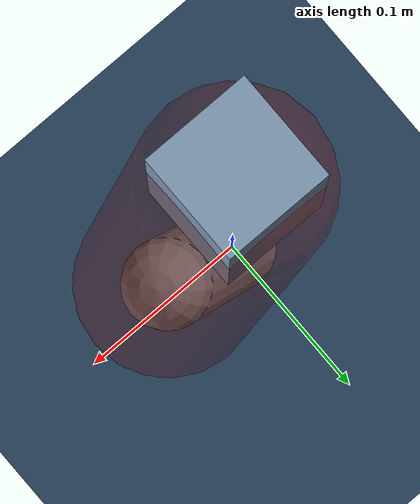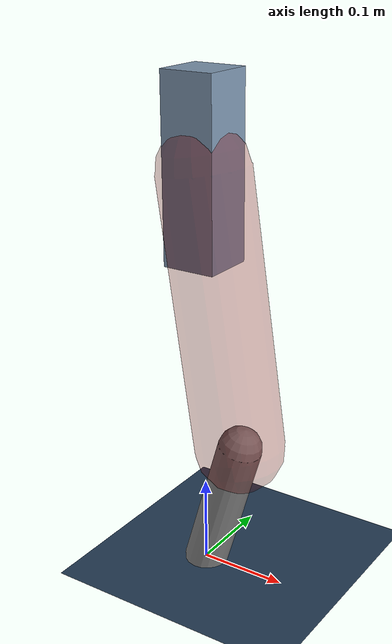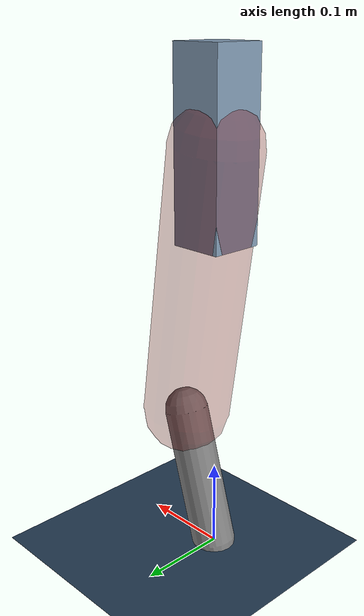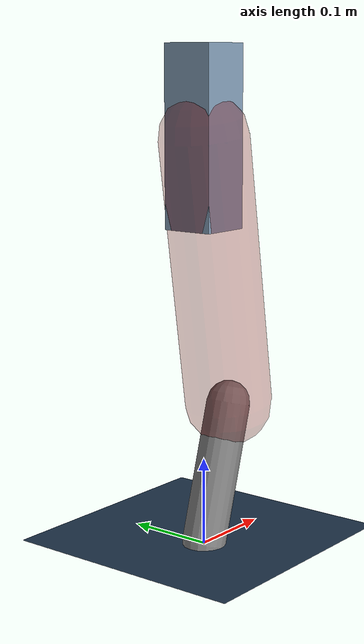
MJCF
<mujoco model="Hopper2D">
	<compiler inertiafromgeom="true" angle="radian" />
	<option timestep="0.001" integrator="implicit" cone="elliptic" solver="Newton" tolerance="1e-10" />

	<default>
		<geom contype="1" conaffinity="1" condim="3" friction="2 0.005 0.0001" solref="0.005 1" />
		<joint limited="true" damping="0.1" />
	</default>

	<asset>
		<texture name="skybox" type="skybox" builtin="gradient" rgb1=".4 .6 .8" rgb2="0 0 0" width="800" height="800" />
		<texture name="grid" type="2d" builtin="checker" rgb1=".1 .2 .3" rgb2=".2 .3 .4" width="300" height="300" mark="edge" markrgb=".2 .3 .4" />
		<material name="ground" texture="grid" texrepeat="1 1" texuniform="true" reflectance="0.1" />
		<material name="leg" rgba="0.5 0.6 0.7 1" />
	</asset>

	<worldbody>

		<geom name="floor" type="plane" size="5 5 0.25" material="ground" />

		<light directional="false" diffuse="0.8 0.8 0.8" specular="0.3 0.3 0.3" pos="0 0 2" dir="0 0 -1" />
		<light mode="targetbodycom" target="base" directional="false" diffuse="0.8 0.8 0.8" specular="0.3 0.3 0.3" pos="0 0 2" dir="0 0 -1" />

		<camera name="fixed" pos="0 -2 1" xyaxes="1 0 0 0 0 1" />
		<camera name="tracking" mode="trackcom" pos="0 -3 1" />

		<body name="root" pos="0 0 0.4619359863104455">
			<joint name="slide_x" type="slide" axis="1 0 0" range="-100 100" />
			<joint name="slide_z" type="slide" axis="0 0 1" range="0 10" />

			<body name="base" pos="0 0 0">
				<geom name="torso" type="box" size="0.03 0.03 0.1" mass="3.419" material="leg" />

				<body name="link1" pos="0 0 0" euler="0 1.4210849767101081 0">
					<joint type="hinge" axis="0 -1 0" pos="0 0 0" name="hinge1" limited="true" range="-3.14 3.14" stiffness="0" damping="0.1" />
					<geom name="thigh" type="capsule" fromto="0 0 0 0.3078603448358754 0 0" size="0.05" rgba="0.5 0 0 0.3" mass="1.0100229310568636" />

					<body name="link2" pos="0.3078603448358754 0 0" euler="0 0.4333596166143108 0">
						<joint type="hinge" axis="0 -1 0" pos="0 0 0" name="hinge2" limited="true" range="-3.14 3.14" stiffness="0" damping="0.1" />
						<geom name="shank" type="capsule" fromto="0 0 0 0.16407564147457018 0 0" size="0.025" mass="0.37016051317965615" />

					</body>
				</body>
			</body>
		</body>
	</worldbody>

	<actuator>
		<motor name="torque1" joint="hinge1" ctrlrange="-106.95098276907329 106.95098276907329" ctrllimited="true" gear="1" />
		<motor name="torque2" joint="hinge2" ctrlrange="-101.83440379979055 101.83440379979055" ctrllimited="true" gear="1" />
	</actuator>
</mujoco>
